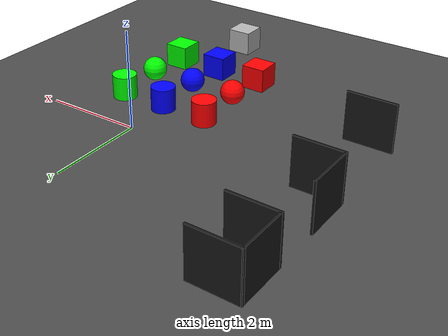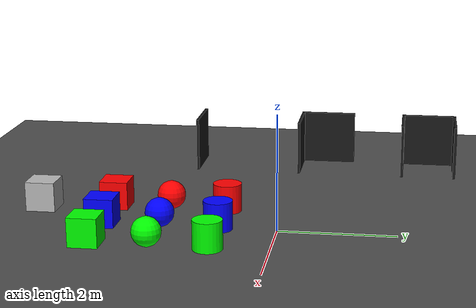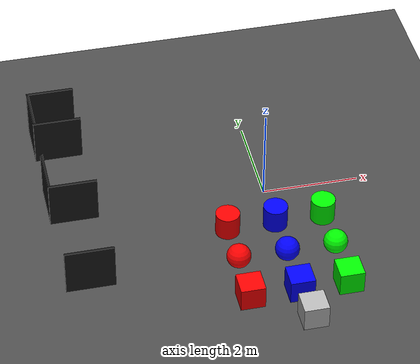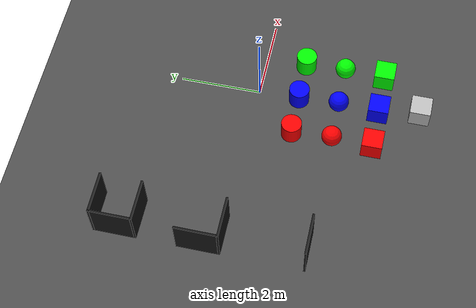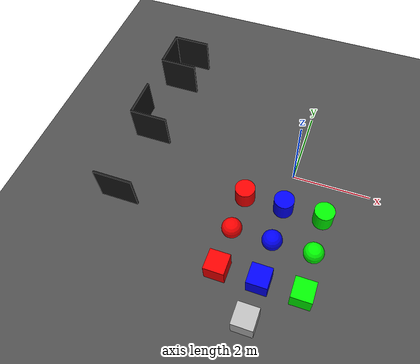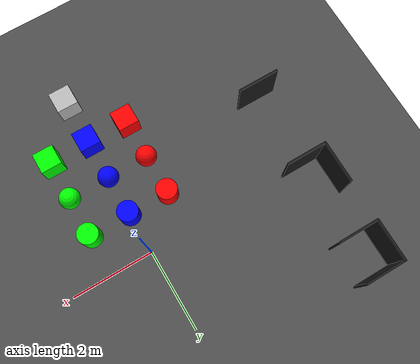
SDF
<sdf version="1.4">
 <world name="default">
  <include><uri>model://labrob_ground</uri></include>
  <include><uri>model://sun</uri></include>
  <include><uri>model://cube_red</uri><pose>-1 -3 0 0 0 0</pose></include>
  <include><uri>model://cube_blue</uri><pose>0 -3 0 0 0 0</pose></include>
  <include><uri>model://cube_green</uri><pose>1 -3 0 0 0 0</pose></include>
  <include><uri>model://sphere_red</uri><pose>-1 -2 0 0 0 0</pose></include>
  <include><uri>model://sphere_blue</uri><pose>0 -2 0 0 0 0</pose></include>
  <include><uri>model://sphere_green</uri><pose>1 -2 0 0 0 0</pose></include>
  <include><uri>model://cylinder_red</uri><pose>-1 -1 0 0 0 0</pose></include>
  <include><uri>model://cylinder_blue</uri><pose>0 -1 0 0 0 0</pose></include>
  <include><uri>model://cylinder_green</uri><pose>1 -1 0 0 0 0</pose></include>
  <include><uri>model://barrier_1</uri><pose>-4 -2 0 0 0 0</pose></include>
  <include><uri>model://barrier_2</uri><pose>-4 0 0 0 0 0</pose></include>
  <include><uri>model://barrier_3</uri><pose>-4 2 0 0 0 0</pose></include>
  <include><uri>model://aruco_cube</uri><pose>0 -4 0 0 0 0</pose></include>
 </world>
</sdf>

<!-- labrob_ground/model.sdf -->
<sdf version="1.5">
  <model name="labrob_ground">
    <static>true</static>
    <link name="link">
      <collision name="collision">
        <geometry>
          <plane>
            <normal>0 0 1</normal>
            <size>20 20</size>
          </plane>
        </geometry>
        <surface>

        <contact>
          <collide_bitmask>0x02</collide_bitmask>
        </contact>

        </surface>
      </collision>
      <visual name="visual">
        <cast_shadows>false</cast_shadows>
        <geometry>
          <plane>
            <normal>0 0 1</normal>
            <size>20 20</size>
          </plane>
        </geometry>
        <material>
          <script>
            <uri>model://labrob_ground/materials/scripts/</uri>
            <uri>model://labrob_ground/materials/textures/</uri>
            <name>Labrob/AsphaltGround</name>
          </script>
        </material>
      </visual>
    </link>
  </model>
</sdf>

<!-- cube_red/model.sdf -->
<sdf version='1.4'>
  <model name="cube_red">
	<static>true</static>
	<link name='chassis'>
	<pose>0 0 .25 0 0 0</pose>

	<collision name='collision'>
	  <geometry>
		<box>
		  <size>.5 .5 .5</size>
		</box>
	  </geometry>
	</collision>

	<visual name='visual'>
	  <geometry>
		<box>
		  <size>.5 .5 .5</size>
		</box>
	  </geometry>
      <material>
        <ambient>1 0 0 1</ambient>
        <diffuse>1 0 0 1</diffuse>
        <specular>0.1 0.1 0.1 1</specular>
        <emissive>0 0 0 0</emissive>
      </material>
	</visual>
	</link>
	</model>
</sdf>

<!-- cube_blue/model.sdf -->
<sdf version='1.4'>
  <model name="cube_blue">
	<static>true</static>
	<link name='chassis'>
	<pose>0 0 .25 0 0 0</pose>

	<collision name='collision'>
	  <geometry>
		<box>
		  <size>.5 .5 .5</size>
		</box>
	  </geometry>
	</collision>

	<visual name='visual'>
	  <geometry>
		<box>
		  <size>.5 .5 .5</size>
		</box>
	  </geometry>
      <material>
        <ambient>0 0 1 1</ambient>
        <diffuse>0 0 1 1</diffuse>
        <specular>0.1 0.1 0.1 1</specular>
        <emissive>0 0 0 0</emissive>
      </material>
	</visual>
	</link>
	</model>
</sdf>

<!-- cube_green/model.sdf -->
<sdf version='1.4'>
  <model name="cube_green">
	<static>true</static>
	<link name='chassis'>
	<pose>0 0 .25 0 0 0</pose>

	<collision name='collision'>
	  <geometry>
		<box>
		  <size>.5 .5 .5</size>
		</box>
	  </geometry>
	</collision>

	<visual name='visual'>
	  <geometry>
		<box>
		  <size>.5 .5 .5</size>
		</box>
	  </geometry>
      <material>
        <ambient>0 1 0 1</ambient>
        <diffuse>0 1 0 1</diffuse>
        <specular>0.1 0.1 0.1 1</specular>
        <emissive>0 0 0 0</emissive>
      </material>
	</visual>
	</link>
	</model>
</sdf>

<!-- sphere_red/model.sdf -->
<sdf version='1.4'>
  <model name="sphere_red">
	<static>true</static>
	<link name='chassis'>
	<pose>0 0 .25 0 0 0</pose>

	<collision name='collision'>
	  <geometry>
		<sphere>
		  <radius>.25</radius>
		</sphere>
	  </geometry>
	</collision>

	<visual name='visual'>
	  <geometry>
		<sphere>
		  <radius>.25</radius>
		</sphere>
	  </geometry>
      <material>
        <ambient>1 0 0 1</ambient>
        <diffuse>1 0 0 1</diffuse>
        <specular>0.1 0.1 0.1 1</specular>
        <emissive>0 0 0 0</emissive>
      </material>
	</visual>
	</link>
	</model>
</sdf>

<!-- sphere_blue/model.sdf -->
<sdf version='1.4'>
  <model name="sphere_blue">
	<static>true</static>
	<link name='chassis'>
	<pose>0 0 .25 0 0 0</pose>

	<collision name='collision'>
	  <geometry>
		<sphere>
		  <radius>.25</radius>
		</sphere>
	  </geometry>
	</collision>

	<visual name='visual'>
	  <geometry>
		<sphere>
		  <radius>.25</radius>
		</sphere>
	  </geometry>
      <material>
        <ambient>0 0 1 1</ambient>
        <diffuse>0 0 1 1</diffuse>
        <specular>0.1 0.1 0.1 1</specular>
        <emissive>0 0 0 0</emissive>
      </material>
	</visual>
	</link>
	</model>
</sdf>

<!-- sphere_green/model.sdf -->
<sdf version='1.4'>
  <model name="sphere_green">
	<static>true</static>
	<link name='chassis'>
	<pose>0 0 .25 0 0 0</pose>

	<collision name='collision'>
	  <geometry>
		<sphere>
		  <radius>.25</radius>
		</sphere>
	  </geometry>
	</collision>

	<visual name='visual'>
	  <geometry>
		<sphere>
		  <radius>.25</radius>
		</sphere>
	  </geometry>
      <material>
        <ambient>0 1 0 1</ambient>
        <diffuse>0 1 0 1</diffuse>
        <specular>0.1 0.1 0.1 1</specular>
        <emissive>0 0 0 0</emissive>
      </material>
	</visual>
	</link>
	</model>
</sdf>

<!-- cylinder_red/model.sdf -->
<sdf version='1.4'>
  <model name="cylinder_red">
	<static>true</static>
	<link name='chassis'>
	<pose>0 0 .25 0 0 0</pose>

	<collision name='collision'>
	  <geometry>
		<cylinder>
		  <radius>.25</radius>
		  <length>.5</length>
		</cylinder>
	  </geometry>
	</collision>

	<visual name='visual'>
	  <geometry>
		<cylinder>
		  <radius>.25</radius>
		  <length>.5</length>
		</cylinder>
	  </geometry>
      <material>
        <ambient>1 0 0 1</ambient>
        <diffuse>1 0 0 1</diffuse>
        <specular>0.1 0.1 0.1 1</specular>
        <emissive>0 0 0 0</emissive>
      </material>
	</visual>
	</link>
	</model>
</sdf>

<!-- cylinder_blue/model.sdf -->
<sdf version='1.4'>
  <model name="cylinder_blue">
	<static>true</static>
	<link name='chassis'>
	<pose>0 0 .25 0 0 0</pose>

	<collision name='collision'>
	  <geometry>
		<cylinder>
		  <radius>.25</radius>
		  <length>.5</length>
		</cylinder>
	  </geometry>
	</collision>

	<visual name='visual'>
	  <geometry>
		<cylinder>
		  <radius>.25</radius>
		  <length>.5</length>
		</cylinder>
	  </geometry>
      <material>
        <ambient>0 0 1 1</ambient>
        <diffuse>0 0 1 1</diffuse>
        <specular>0.1 0.1 0.1 1</specular>
        <emissive>0 0 0 0</emissive>
      </material>
	</visual>
	</link>
	</model>
</sdf>

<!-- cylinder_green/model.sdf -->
<sdf version='1.4'>
  <model name="cylinder_green">
	<static>true</static>
	<link name='chassis'>
	<pose>0 0 .25 0 0 0</pose>

	<collision name='collision'>
	  <geometry>
		<cylinder>
		  <radius>.25</radius>
		  <length>.5</length>
		</cylinder>
	  </geometry>
	</collision>

	<visual name='visual'>
	  <geometry>
		<cylinder>
		  <radius>.25</radius>
		  <length>.5</length>
		</cylinder>
	  </geometry>
      <material>
        <ambient>0 1 0 1</ambient>
        <diffuse>0 1 0 1</diffuse>
        <specular>0.1 0.1 0.1 1</specular>
        <emissive>0 0 0 0</emissive>
      </material>
	</visual>
	</link>
	</model>
</sdf>

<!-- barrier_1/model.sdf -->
<sdf version='1.4'>
  <model name="barrier_1">
	<static>true</static>
	<link name='chassis'>
	<pose>0 0 0.5 0 0 0</pose>

	<collision name='barrier_collision'>
	  <geometry>
		<box>
		  <size>1 .05 1</size>
		</box>
	  </geometry>
	</collision>

	<visual name='visual'>
	  <geometry>
		<box>
		  <size>1 .05 1</size>
		</box>
	  </geometry>
      <material>
        <ambient>.1 .1 .1 1</ambient>
        <diffuse>.1 .1 .1 1</diffuse>
        <specular>0.1 0.1 0.1 1</specular>
        <emissive>0 0 0 0</emissive>
      </material>
	</visual>
	<sensor name="contact_sensor_1" type="contact">

	<plugin name="my_contact_plugin" filename="libgazebo_ros_bumper.so">
		<bumperTopicName>obstacle_bumper</bumperTopicName>
    		<frameName>world</frameName>
	</plugin>
          <contact>
            <collision>barrier_collision</collision>
          </contact>

      </sensor>
	</link>
	</model>
</sdf>

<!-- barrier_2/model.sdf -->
<sdf version='1.4'>
  <model name="barrier_2">
	<static>true</static>
	<link name='chassis'>
	<pose>0 0 0.5 0 0 0</pose>

	<collision name='barrier_collision'>
	  <geometry>
		<box>
		  <size>1 .05 1</size>
		</box>
	  </geometry>
	</collision>

	<visual name='visual'>
	  <geometry>
		<box>
		  <size>1 .05 1</size>
		</box>
	  </geometry>
      <material>
        <ambient>.1 .1 .1 1</ambient>
        <diffuse>.1 .1 .1 1</diffuse>
        <specular>0.1 0.1 0.1 1</specular>
        <emissive>0 0 0 0</emissive>
      </material>
	</visual>

	<collision name='barrier_collision2'>
      <pose>-0.475 0.525 0 0 0 1.57</pose>
	  <geometry>
		<box>
		  <size>1 .05 1</size>
		</box>
	  </geometry>
	</collision>

	<visual name='visual2'>
      <pose>-0.475 0.525 0 0 0 1.57</pose>
	  <geometry>
		<box>
		  <size>1 .05 1</size>
		</box>
	  </geometry>
      <material>
        <ambient>.1 .1 .1 1</ambient>
        <diffuse>.1 .1 .1 1</diffuse>
        <specular>0.1 0.1 0.1 1</specular>
        <emissive>0 0 0 0</emissive>
      </material>
	</visual>
	<sensor name="contact_sensor_1" type="contact">

	<plugin name="my_contact_plugin" filename="libgazebo_ros_bumper.so">
		<bumperTopicName>obstacle_bumper</bumperTopicName>
    		<frameName>world</frameName>
	</plugin>
          <contact>
            <collision>barrier_collision</collision>
          </contact>

      </sensor>
	<sensor name="contact_sensor_2" type="contact">

	<plugin name="my_contact_plugin" filename="libgazebo_ros_bumper.so">
		<bumperTopicName>obstacle_bumper</bumperTopicName>
    		<frameName>world</frameName>
	</plugin>
          <contact>
            <collision>barrier_collision2</collision>
          </contact>

      </sensor>
	</link>
	</model>
</sdf>

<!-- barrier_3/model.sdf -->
<sdf version='1.4'>
  <model name="barrier_3">
	<static>true</static>
	<link name='chassis'>
	<pose>0 0 0.5 0 0 0</pose>

	<collision name='collision'>
	  <geometry>
		<box>
		  <size>1 .05 1</size>
		</box>
	  </geometry>
	</collision>

	<visual name='visual'>
	  <geometry>
		<box>
		  <size>1 .05 1</size>
		</box>
	  </geometry>
      <material>
        <ambient>.1 .1 .1 1</ambient>
        <diffuse>.1 .1 .1 1</diffuse>
        <specular>0.1 0.1 0.1 1</specular>
        <emissive>0 0 0 0</emissive>
      </material>
	</visual>

	<collision name='collision2'>
      <pose>-0.475 0.525 0 0 0 1.57</pose>
	  <geometry>
		<box>
		  <size>1 .05 1</size>
		</box>
	  </geometry>
	</collision>

	<visual name='visual2'>
      <pose>-0.475 0.525 0 0 0 1.57</pose>
	  <geometry>
		<box>
		  <size>1 .05 1</size>
		</box>
	  </geometry>
      <material>
        <ambient>.1 .1 .1 1</ambient>
        <diffuse>.1 .1 .1 1</diffuse>
        <specular>0.1 0.1 0.1 1</specular>
        <emissive>0 0 0 0</emissive>
      </material>
	</visual>

	<collision name='collision3'>
      <pose>0 1 0 0 0 0</pose>
	  <geometry>
		<box>
		  <size>1 .05 1</size>
		</box>
	  </geometry>
	</collision>

	<visual name='visual3'>
      <pose>0 1 0 0 0 0</pose>
	  <geometry>
		<box>
		  <size>1 .05 1</size>
		</box>
	  </geometry>
      <material>
        <ambient>.1 .1 .1 1</ambient>
        <diffuse>.1 .1 .1 1</diffuse>
        <specular>0.1 0.1 0.1 1</specular>
        <emissive>0 0 0 0</emissive>
      </material>
	</visual>
	<sensor name="contact_sensor_1" type="contact">

	<plugin name="my_contact_plugin" filename="libgazebo_ros_bumper.so">
		<bumperTopicName>obstacle_bumper</bumperTopicName>
    		<frameName>world</frameName>
	</plugin>
          <contact>
            <collision>collision</collision>
          </contact>

      </sensor>
	<sensor name="contact_sensor_2" type="contact">

	<plugin name="my_contact_plugin" filename="libgazebo_ros_bumper.so">
		<bumperTopicName>obstacle_bumper</bumperTopicName>
    		<frameName>world</frameName>
	</plugin>
          <contact>
            <collision>collision2</collision>
          </contact>

      </sensor>
	<sensor name="contact_sensor_3" type="contact">

	<plugin name="my_contact_plugin" filename="libgazebo_ros_bumper.so">
		<bumperTopicName>obstacle_bumper</bumperTopicName>
    		<frameName>world</frameName>
	</plugin>
          <contact>
            <collision>collision3</collision>
          </contact>

      </sensor>

	</link>
	</model>
</sdf>

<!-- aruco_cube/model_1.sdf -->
<sdf version='1.4'>
  <model name="aruco_cube">
	<static>true</static>
	<link name='chassis'>
	<pose>0 0 .50 0 0 0</pose>

	<collision name='collision'>
	  <geometry>
		<box>
		  <size>.5 .5 .5</size>
		</box>
	  </geometry>
	</collision>

	<visual name='visual'>
	  <geometry>
		<box>
		  <size>.5 .5 .5</size>
		</box>
	  </geometry>
        <material>
          <script>
            <uri>model://aruco_cube/materials/scripts/aruco_1.material</uri>
            <uri>model://aruco_cube/materials/textures</uri>
            <name>Aruco1/Diffuse</name>
          </script>
        </material>
	</visual>
	</link>
	</model>
</sdf>
